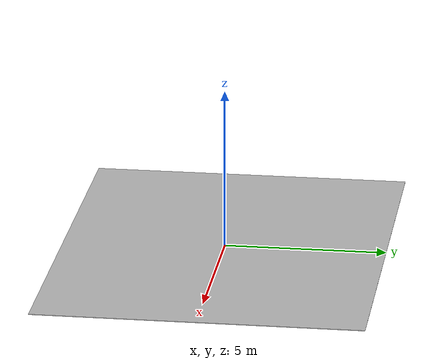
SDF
<?xml version="1.0" ?>
<sdf version="1.4">
  <model name="blue_tape_floor">
    <static>true</static>
    <link name="link">
      <collision name="collision">
        <geometry>
          <box>
            <size>13 10 .02</size>
          </box>
        </geometry>
      </collision>
      <visual name="visual">
        <cast_shadows>false</cast_shadows>
        <geometry>
          <box>
            <size>13 10 .02</size>
          </box>
        </geometry>
        <material>
          <script>
            <uri>model://blue_tape_floor/materials/scripts</uri>
            <uri>model://blue_tape_floor/materials/textures</uri>
            <name>vrc/floor</name>
          </script>
        </material>
      </visual>
    </link>
  </model>
</sdf>
